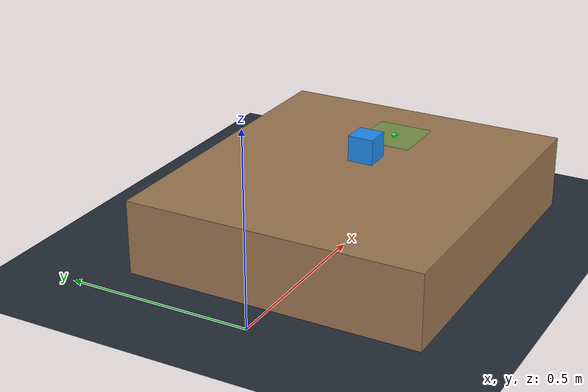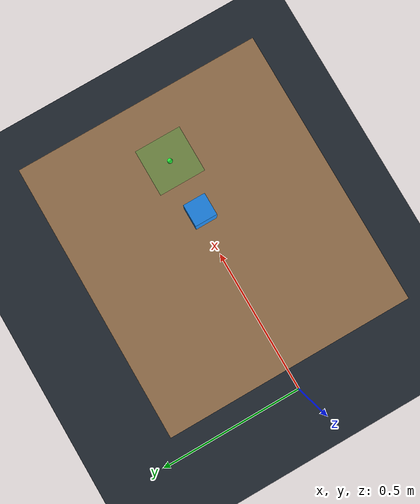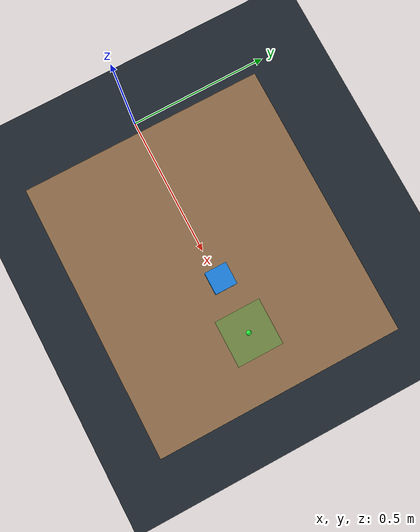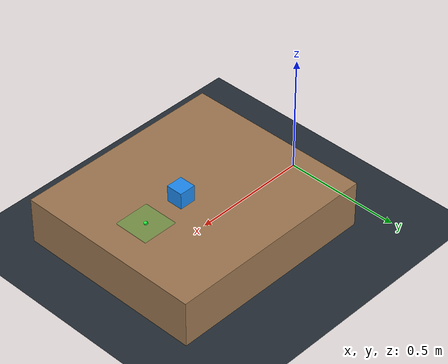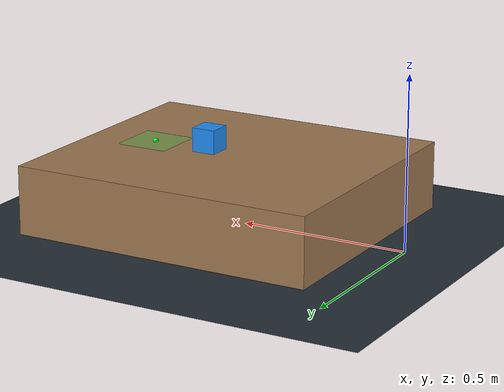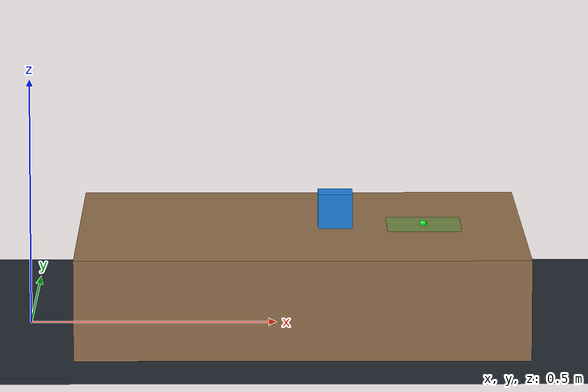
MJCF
<mujoco model="fr3 block push task">
  <statistic center="0.5 0 0.35" extent="1.1"/>

  <visual>
    <headlight diffuse="0.7 0.7 0.7" ambient="0.3 0.3 0.3" specular="0.1 0.1 0.1"/>
    <global azimuth="120" elevation="-25"/>
  </visual>

  <asset>
    <texture name="push_ground_texture" type="2d" builtin="checker"
      rgb1="0.18 0.22 0.26" rgb2="0.10 0.13 0.16" width="256" height="256"/>
    <material name="push_ground_material" texture="push_ground_texture"
      texuniform="true" texrepeat="4 4" reflectance="0.1"/>
  </asset>

  <worldbody>
    <light name="push_key_light" pos="0.4 -0.3 1.5" dir="0.1 0 -1" directional="true"/>
    <geom name="push_floor" type="plane" size="1.4 1.2 0.05"
      material="push_ground_material"/>

    <camera name="policy_camera_top" pos="0.55 0 1.45"
      quat="1 0 0 0" fovy="45" resolution="640 480"/>
    <camera name="operator_camera_overhead" pos="1.10 0 1.55"
      xyaxes="0 1 0 -0.926 0 0.377" fovy="34" resolution="640 480"/>

    <body name="push_table" pos="0.55 0 0.10">
      <geom name="push_table_geom" type="box" size="0.45 0.40 0.10"
        rgba="0.62 0.47 0.32 1" friction="0.9 0.01 0.001"/>
    </body>

    <body name="push_block" pos="0.62 0 0.235">
      <joint name="push_block_joint" type="free"/>
      <geom name="push_block_geom" type="box" size="0.035 0.035 0.035"
        mass="0.30" friction="0.8 0.02 0.002" rgba="0.12 0.55 0.95 1"/>
      <site name="push_block_site" size="0.006" rgba="1 1 1 0.8"/>
    </body>

    <body name="push_goal" pos="0.80 0 0.202">
      <geom name="push_goal_geom" type="box" size="0.075 0.075 0.002"
        contype="0" conaffinity="0" rgba="0.15 0.9 0.25 0.28"/>
      <site name="push_goal_site" size="0.008" rgba="0.15 1 0.25 0.9"/>
    </body>

  </worldbody>
</mujoco>
